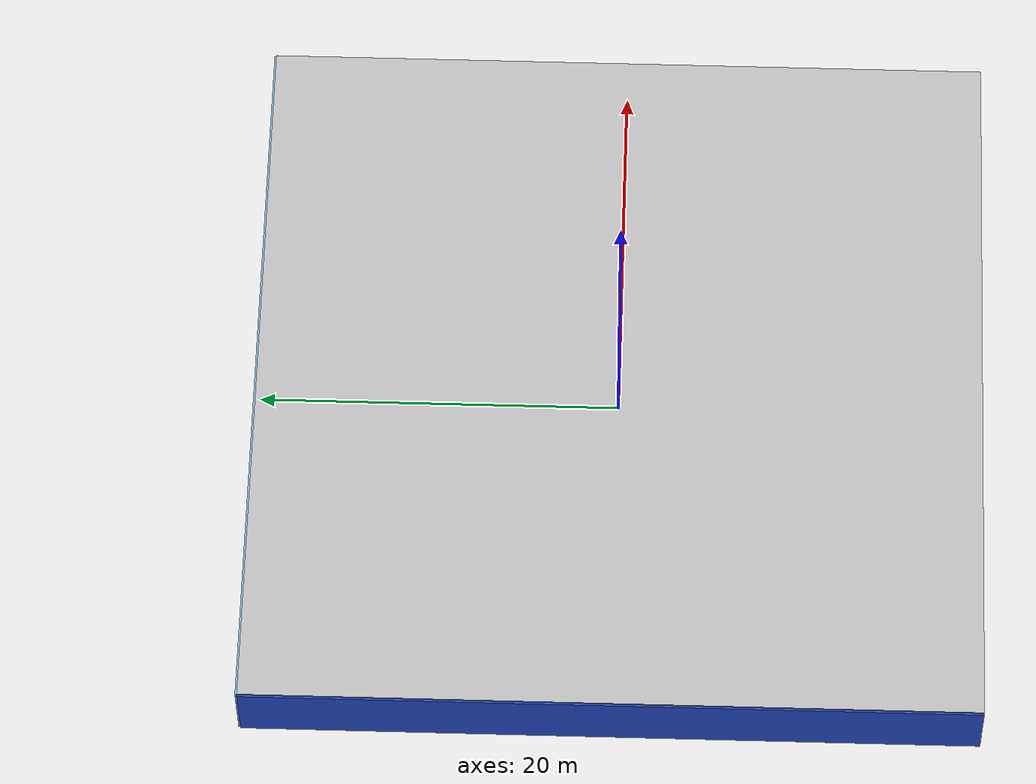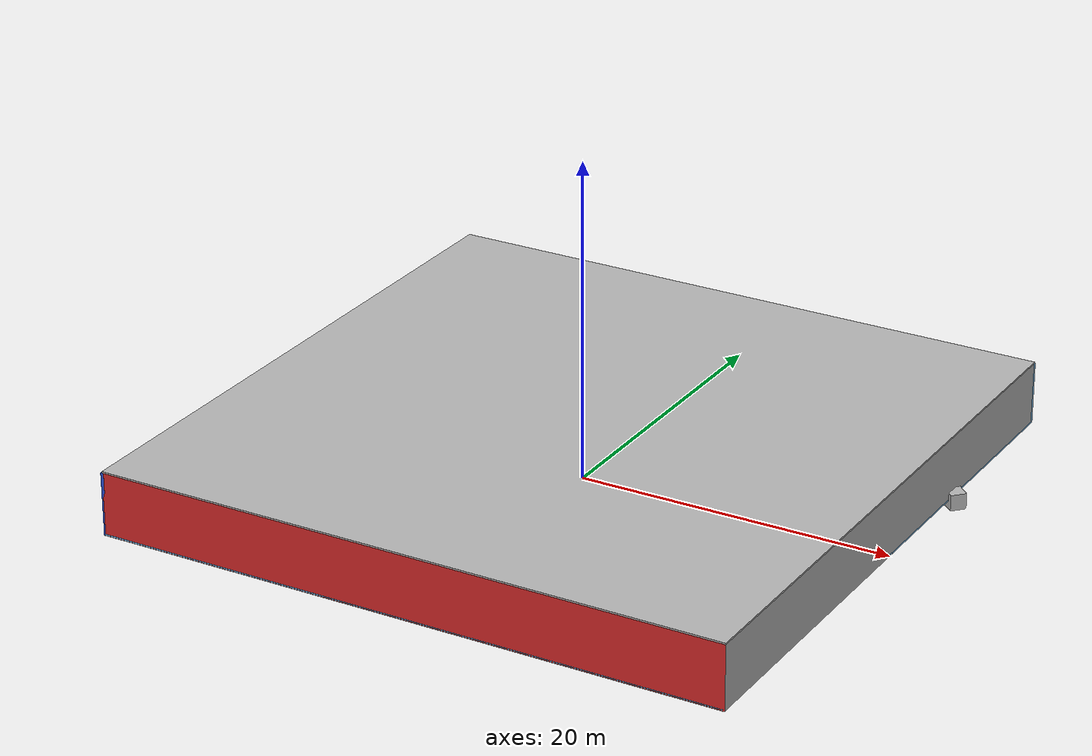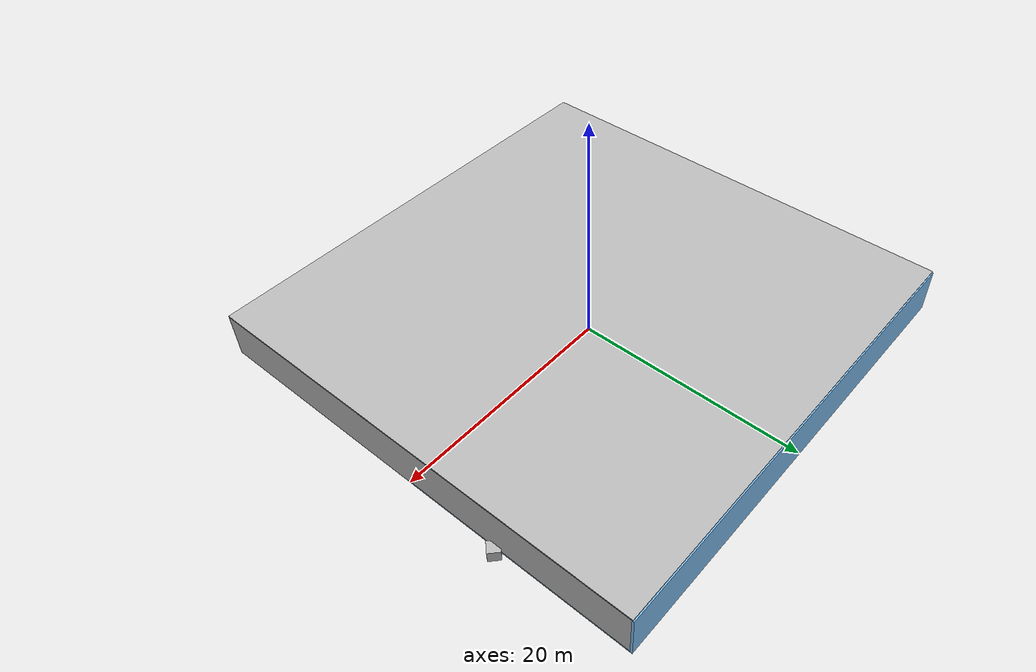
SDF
<sdf version="1.4">
 <world name="default">
  <physics type="ode">
   <max_step_size>0.001</max_step_size>
   <real_time_factor>1</real_time_factor>
   <real_time_update_rate>1000</real_time_update_rate>
   <gravity>0 0 -9.8</gravity>
  </physics>
  <scene><ambient>0.4 0.4 0.4 1</ambient><background>0.7 0.7 0.7 1</background><shadows>1</shadows></scene>
  <model name="Surrounding">
   <static>1</static>
   <link name="Ceiling">
    <collision name="Ceiling_Collision"><geometry><box><size>40 40 0.1</size></box></geometry></collision>
    <visual name="Ceiling_Visual">
     <geometry><box><size>40 40 0.1</size></box></geometry>
     <material>
      <script><uri>file://media/materials/scripts/gazebo.material</uri><name>Gazebo/LightOn</name></script>
     </material>
    </visual>
    <pose>0 0 4.05 0 0 0</pose>
   </link>
   <link name="Wall_South">
    <collision name="Wall_South_Collision">
     <geometry><box><size>40 0 4</size></box></geometry>
     <pose>0 0 2 0 -0 0</pose>
    </collision>
    <visual name="Wall_South_Visual">
     <pose>0 0 2 0 -0 0</pose>
     <geometry><box><size>40 0 4</size></box></geometry>
     <material>
      <script><uri>file://media/materials/scripts/gazebo.material</uri><name>Gazebo/RedBright</name></script>
     </material>
    </visual>
    <velocity_decay><linear>0</linear><angular>0</angular></velocity_decay>
    <pose>0 -20 0 0 -0 0</pose>
   </link>
   <link name="Wall_East">
    <collision name="Wall_21_Collision">
     <geometry><box><size>40 0 4</size></box></geometry>
     <pose>0 0 2 0 -0 0</pose>
    </collision>
    <visual name="Wall_21_Visual">
     <pose>0 0 2 0 -0 0</pose>
     <geometry><box><size>40 0 4</size></box></geometry>
     <material>
      <script><uri>file://media/materials/scripts/gazebo.material</uri><name>Gazebo/LightOff</name></script>
     </material>
    </visual>
    <velocity_decay><linear>0</linear><angular>0</angular></velocity_decay>
    <pose>20 0 0 0 -0 1.5708</pose>
   </link>
   <link name="Wall_North">
    <collision name="Wall_22_Collision">
     <geometry><box><size>40 0.2 4</size></box></geometry>
     <pose>0 0 2 0 -0 0</pose>
    </collision>
    <visual name="Wall_22_Visual">
     <pose>0 0 2 0 -0 0</pose>
     <geometry><box><size>40 0.2 4</size></box></geometry>
     <material>
      <script><uri>file://media/materials/scripts/gazebo.material</uri><name>Gazebo/SkyBlue</name></script>
     </material>
    </visual>
    <velocity_decay><linear>0</linear><angular>0</angular></velocity_decay>
    <pose>0 20 0 0 -0 0</pose>
   </link>
   <link name="Wall_West">
    <collision name="Wall_23_Collision">
     <geometry><box><size>40 0.2 4</size></box></geometry>
     <pose>0 0 2 0 -0 0</pose>
    </collision>
    <visual name="Wall_23_Visual">
     <pose>0 0 2 0 -0 0</pose>
     <geometry><box><size>40 0.2 4</size></box></geometry>
     <material>
      <script><uri>file://media/materials/scripts/gazebo.material</uri><name>Gazebo/BlueGlow</name></script>
     </material>
    </visual>
    <velocity_decay><linear>0</linear><angular>0</angular></velocity_decay>
    <pose>-20 0 0 0 0 -1.5708</pose>
   </link>
   <link name="Ground_link">
    <collision name="collision">
     <pose>0 0 .05 0 -0 0</pose>
     <geometry><box><size>40 40 0.1</size></box></geometry>
    </collision>
    <visual name="visual">
     <pose>0 0 .05 0 -0 0</pose>
     <geometry><box><size>40 40 0.1</size></box></geometry>
     <material>
      <script><uri>file://media/materials/scripts/gazebo.material</uri><name>Gazebo/SkyBlue</name></script>
     </material>
    </visual>
   </link>
   <static>1</static>
  </model>
  <spherical_coordinates>
   <surface_model>EARTH_WGS84</surface_model>
   <latitude_deg>0</latitude_deg>
   <longitude_deg>0</longitude_deg>
   <elevation>0</elevation>
   <heading_deg>0</heading_deg>
  </spherical_coordinates>
  <light name="lightball_0" type="diffuse">
   <diffuse>0.8 0.8 0.8 1</diffuse>
   <specular>0.2 0.2 0.2 1</specular>
   <attenuation>
    <range>100</range>
    <constant>0.7</constant>
    <linear>0.01</linear>
    <quadratic>0.001</quadratic>
   </attenuation>
   <direction>-0.5 0.1 -0.9</direction>
   <pose>-13.303624777 11.2001728936 0.504377625863 0 0 0</pose>
  </light>
  <light name="lightball_1" type="diffuse">
   <diffuse>0.8 0.8 0.8 1</diffuse>
   <specular>0.2 0.2 0.2 1</specular>
   <attenuation>
    <range>100</range>
    <constant>0.7</constant>
    <linear>0.01</linear>
    <quadratic>0.001</quadratic>
   </attenuation>
   <direction>-0.5 0.1 -0.9</direction>
   <pose>-16.1927024923 6.22709436434 0.91754890593 0 0 0</pose>
  </light>
  <light name="lightball_2" type="diffuse">
   <diffuse>0.8 0.8 0.8 1</diffuse>
   <specular>0.2 0.2 0.2 1</specular>
   <attenuation>
    <range>100</range>
    <constant>0.7</constant>
    <linear>0.01</linear>
    <quadratic>0.001</quadratic>
   </attenuation>
   <direction>-0.5 0.1 -0.9</direction>
   <pose>2.45469882551 10.5399261077 2.51161835508 0 0 0</pose>
  </light>
  <light name="lightball_3" type="diffuse">
   <diffuse>0.8 0.8 0.8 1</diffuse>
   <specular>0.2 0.2 0.2 1</specular>
   <attenuation>
    <range>100</range>
    <constant>0.7</constant>
    <linear>0.01</linear>
    <quadratic>0.001</quadratic>
   </attenuation>
   <direction>-0.5 0.1 -0.9</direction>
   <pose>-6.83499091477 -18.0171712113 2.76945980363 0 0 0</pose>
  </light>
  <light name="lightball_4" type="diffuse">
   <diffuse>0.8 0.8 0.8 1</diffuse>
   <specular>0.2 0.2 0.2 1</specular>
   <attenuation>
    <range>100</range>
    <constant>0.7</constant>
    <linear>0.01</linear>
    <quadratic>0.001</quadratic>
   </attenuation>
   <direction>-0.5 0.1 -0.9</direction>
   <pose>11.8028416804 6.72295224083 2.2644674921 0 0 0</pose>
  </light>
  <light name="lightball_5" type="diffuse">
   <diffuse>0.8 0.8 0.8 1</diffuse>
   <specular>0.2 0.2 0.2 1</specular>
   <attenuation>
    <range>100</range>
    <constant>0.7</constant>
    <linear>0.01</linear>
    <quadratic>0.001</quadratic>
   </attenuation>
   <direction>-0.5 0.1 -0.9</direction>
   <pose>1.22041989282 12.6933869335 2.50016743247 0 0 0</pose>
  </light>
  <light name="lightball_6" type="diffuse">
   <diffuse>0.8 0.8 0.8 1</diffuse>
   <specular>0.2 0.2 0.2 1</specular>
   <attenuation>
    <range>100</range>
    <constant>0.7</constant>
    <linear>0.01</linear>
    <quadratic>0.001</quadratic>
   </attenuation>
   <direction>-0.5 0.1 -0.9</direction>
   <pose>-10.2048594065 7.00373193059 3.1046270723 0 0 0</pose>
  </light>
  <light name="lightball_7" type="diffuse">
   <diffuse>0.8 0.8 0.8 1</diffuse>
   <specular>0.2 0.2 0.2 1</specular>
   <attenuation>
    <range>100</range>
    <constant>0.7</constant>
    <linear>0.01</linear>
    <quadratic>0.001</quadratic>
   </attenuation>
   <direction>-0.5 0.1 -0.9</direction>
   <pose>8.58497570092 0.756720951432 3.37351430451 0 0 0</pose>
  </light>
  <light name="lightball_8" type="diffuse">
   <diffuse>0.8 0.8 0.8 1</diffuse>
   <specular>0.2 0.2 0.2 1</specular>
   <attenuation>
    <range>100</range>
    <constant>0.7</constant>
    <linear>0.01</linear>
    <quadratic>0.001</quadratic>
   </attenuation>
   <direction>-0.5 0.1 -0.9</direction>
   <pose>2.18089134428 17.5045494052 2.85300831235 0 0 0</pose>
  </light>
  <light name="lightball_9" type="diffuse">
   <diffuse>0.8 0.8 0.8 1</diffuse>
   <specular>0.2 0.2 0.2 1</specular>
   <attenuation>
    <range>100</range>
    <constant>0.7</constant>
    <linear>0.01</linear>
    <quadratic>0.001</quadratic>
   </attenuation>
   <direction>-0.5 0.1 -0.9</direction>
   <pose>-16.415313164 3.18838706276 0.56857210039 0 0 0</pose>
  </light>
  <light name="lightball_10" type="diffuse">
   <diffuse>0.8 0.8 0.8 1</diffuse>
   <specular>0.2 0.2 0.2 1</specular>
   <attenuation>
    <range>100</range>
    <constant>0.7</constant>
    <linear>0.01</linear>
    <quadratic>0.001</quadratic>
   </attenuation>
   <direction>-0.5 0.1 -0.9</direction>
   <pose>12.6566909687 16.1213638949 3.65079546074 0 0 0</pose>
  </light>
  <light name="lightball_11" type="diffuse">
   <diffuse>0.8 0.8 0.8 1</diffuse>
   <specular>0.2 0.2 0.2 1</specular>
   <attenuation>
    <range>100</range>
    <constant>0.7</constant>
    <linear>0.01</linear>
    <quadratic>0.001</quadratic>
   </attenuation>
   <direction>-0.5 0.1 -0.9</direction>
   <pose>-8.89149210629 -16.9624243931 1.44606982301 0 0 0</pose>
  </light>
  <light name="lightball_12" type="diffuse">
   <diffuse>0.8 0.8 0.8 1</diffuse>
   <specular>0.2 0.2 0.2 1</specular>
   <attenuation>
    <range>100</range>
    <constant>0.7</constant>
    <linear>0.01</linear>
    <quadratic>0.001</quadratic>
   </attenuation>
   <direction>-0.5 0.1 -0.9</direction>
   <pose>-1.19030198925 1.35941216853 2.02719473784 0 0 0</pose>
  </light>
  <light name="lightball_13" type="diffuse">
   <diffuse>0.8 0.8 0.8 1</diffuse>
   <specular>0.2 0.2 0.2 1</specular>
   <attenuation>
    <range>100</range>
    <constant>0.7</constant>
    <linear>0.01</linear>
    <quadratic>0.001</quadratic>
   </attenuation>
   <direction>-0.5 0.1 -0.9</direction>
   <pose>2.68398877674 -11.2319764651 2.05800401177 0 0 0</pose>
  </light>
  <include>
   <uri>model://construction_cone</uri>
   <pose>-17.7467154129 13.0925967163 0 0 0 2.39583106503</pose>
  </include>
  <include><uri>model://table</uri><pose>-13.7446526234 -14.1573888965 0 0 0 2.16260589972</pose></include>
  <include>
   <uri>model://robocup_3Dsim_goal</uri>
   <pose>-13.3573052144 -7.34569663048 0 0 0 1.18027032648</pose>
  </include>
  <include>
   <uri>model://robocup_3Dsim_goal</uri>
   <pose>-13.6293735308 5.40198640591 0 0 0 0.698333543625</pose>
  </include>
  <include>
   <uri>model://construction_cone</uri>
   <pose>-14.2712020655 12.078039194 0 0 0 2.09644073811</pose>
  </include>
  <include><uri>model://cabinet</uri><pose>-15.1825490697 17.6530277057 0 0 0 0.238728154314</pose></include>
  <include><uri>model://cabinet</uri><pose>-12.1035543001 -15.2286571638 0 0 0 1.24656372264</pose></include>
  <include><uri>model://cabinet</uri><pose>-11.8224411309 -4.70265068086 0 0 0 1.73484993806</pose></include>
  <include><uri>model://table</uri><pose>-10.5770650372 1.3133736153 0 0 0 2.19809364427</pose></include>
  <include><uri>model://cabinet</uri><pose>-10.814775312 15.5742663999 0 0 0 2.02575394113</pose></include>
  <include><uri>model://cabinet</uri><pose>-5.5089833612 2.46971024104 0 0 0 2.64130216635</pose></include>
  <include><uri>model://cabinet</uri><pose>-2.91968531315 -1.3731787266 0 0 0 1.94312356707</pose></include>
  <include><uri>model://cabinet</uri><pose>-1.79181998715 0.69009027515 0 0 0 0.765319737302</pose></include>
  <include>
   <uri>model://construction_cone</uri>
   <pose>-3.11466969876 8.43442950593 0 0 0 2.65447093735</pose>
  </include>
  <include>
   <uri>model://construction_cone</uri>
   <pose>-2.91842022717 15.2385741468 0 0 0 1.36332396767</pose>
  </include>
  <include>
   <uri>model://construction_cone</uri>
   <pose>-0.413412644566 4.45190520224 0 0 0 0.134723128162</pose>
  </include>
  <include>
   <uri>model://robocup_3Dsim_goal</uri>
   <pose>-0.146779944049 12.6382387355 0 0 0 1.95035282266</pose>
  </include>
  <include><uri>model://cabinet</uri><pose>0.728915508939 16.6584409543 0 0 0 2.37904402869</pose></include>
  <include><uri>model://cabinet</uri><pose>3.82832257664 3.10253919829 0 0 0 0.665846548822</pose></include>
  <include><uri>model://cabinet</uri><pose>5.50244901585 -12.1128642168 0 0 0 3.00691136633</pose></include>
  <include>
   <uri>model://construction_cone</uri>
   <pose>6.77249306723 -4.6846439603 0 0 0 2.06219264685</pose>
  </include>
  <include><uri>model://cabinet</uri><pose>9.4202704261 -15.3903601745 0 0 0 2.96555061257</pose></include>
  <include>
   <uri>model://textured_shapes</uri>
   <pose>11.9348915683 9.85761564484 0 0 0 2.02228399795</pose>
  </include>
  <include><uri>model://cabinet</uri><pose>15.5869034069 -2.81208879585 0 0 0 1.04439313612</pose></include>
  <include>
   <uri>model://robocup_3Dsim_goal</uri>
   <pose>15.7153810491 -0.493006495532 0 0 0 0.703557330723</pose>
  </include>
  <include>
   <uri>model://construction_cone</uri>
   <pose>14.9674496168 16.4111474388 0 0 0 2.38558405935</pose>
  </include>
  <include><uri>model://cabinet</uri><pose>18.7088759517 -14.4575464137 0 0 0 2.10390469966</pose></include>
  <include><uri>model://cabinet</uri><pose>18.0622261004 -5.10163754654 0 0 0 1.19578061536</pose></include>
  <include>
   <uri>model://textured_shapes</uri>
   <pose>19.1856653149 7.33664046305 0 0 0 2.39498931747</pose>
  </include>
 </world>
</sdf>

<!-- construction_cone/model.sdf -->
<sdf version="1.5">
  <model name="Construction Cone">
    <link name="link">
      <collision name="collision">
        <geometry>
          <mesh>
            <scale>10 10 10</scale>
            <uri>file://isr-testbed/construction_cone/meshes/construction_cone.dae</uri>
          </mesh>
        </geometry>
      </collision>
      <visual name="visual">
        <geometry>
          <mesh>
            <scale>10 10 10</scale>
            <uri>file://isr-testbed/construction_cone/meshes/construction_cone.dae</uri>
          </mesh>
        </geometry>
      </visual>
    </link>
  </model>
</sdf>

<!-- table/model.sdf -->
<sdf version="1.5">
  <model name="table">
    <static>true</static>
    <link name="link">
      <collision name="surface">
        <pose>0 0 1.0 0 0 0</pose>
        <geometry>
          <box>
            <size>1.5 0.8 0.03</size>
          </box>
        </geometry>
        <surface>
          <friction>
            <ode>
              <mu>0.6</mu>
              <mu2>0.6</mu2>
            </ode>
          </friction>
        </surface>
      </collision>
      <visual name="visual1">
        <pose>0 0 1.0 0 0 0</pose>
        <geometry>
          <box>
            <size>1.5 0.8 0.03</size>
          </box>
        </geometry>
        <material>
          <script>
            <uri>model://media/materials/scripts/gazebo.material</uri>
            <name>Gazebo/Wood</name>
          </script>
        </material>
      </visual>
      <collision name="front_left_leg">
        <pose>0.68 0.38 0.5 0 0 0</pose>
        <geometry>
          <cylinder>
            <radius>0.02</radius>
            <length>1.0</length>
          </cylinder>
        </geometry>
      </collision>
      <visual name="front_left_leg">
        <pose>0.68 0.38 0.5 0 0 0</pose>
        <geometry>
          <cylinder>
            <radius>0.02</radius>
            <length>1.0</length>
          </cylinder>
        </geometry>
        <material>
          <script>
            <uri>model://media/materials/scripts/gazebo.material</uri>
            <name>Gazebo/Grey</name>
          </script>
        </material>
      </visual>
      <collision name="front_right_leg">
        <pose>0.68 -0.38 0.5 0 0 0</pose>
        <geometry>
          <cylinder>
            <radius>0.02</radius>
            <length>1.0</length>
          </cylinder>
        </geometry>
      </collision>
      <visual name="front_right_leg">
        <pose>0.68 -0.38 0.5 0 0 0</pose>
        <geometry>
          <cylinder>
            <radius>0.02</radius>
            <length>1.0</length>
          </cylinder>
        </geometry>
        <material>
          <script>
            <uri>model://media/materials/scripts/gazebo.material</uri>
            <name>Gazebo/Grey</name>
          </script>
        </material>
      </visual>
      <collision name="back_right_leg">
        <pose>-0.68 -0.38 0.5 0 0 0</pose>
        <geometry>
          <cylinder>
            <radius>0.02</radius>
            <length>1.0</length>
          </cylinder>
        </geometry>
      </collision>
      <visual name="back_right_leg">
        <pose>-0.68 -0.38 0.5 0 0 0</pose>
        <geometry>
          <cylinder>
            <radius>0.02</radius>
            <length>1.0</length>
          </cylinder>
        </geometry>
        <material>
          <script>
            <uri>model://media/materials/scripts/gazebo.material</uri>
            <name>Gazebo/Grey</name>
          </script>
        </material>
      </visual>
      <collision name="back_left_leg">
        <pose>-0.68 0.38 0.5 0 0 0</pose>
        <geometry>
          <cylinder>
            <radius>0.02</radius>
            <length>1.0</length>
          </cylinder>
        </geometry>
      </collision>
      <visual name="back_left_leg">
        <pose>-0.68 0.38 0.5 0 0 0</pose>
        <geometry>
          <cylinder>
            <radius>0.02</radius>
            <length>1.0</length>
          </cylinder>
        </geometry>
        <material>
          <script>
            <uri>model://media/materials/scripts/gazebo.material</uri>
            <name>Gazebo/Grey</name>
          </script>
        </material>
      </visual>
    </link>
  </model>
</sdf>

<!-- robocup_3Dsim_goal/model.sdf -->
<sdf version="1.5">
  <model name="robocup_3d_goal">
    <static>true</static>
    <link name="left_post">
      <pose>0 1.05 0.45 0 0 0</pose>
      <collision name="collision">
        <geometry>
          <cylinder>
            <radius>0.05</radius>
            <length>0.9</length>
          </cylinder>
        </geometry>
      </collision>
      <visual name="visual">
        <geometry>
          <cylinder>
            <radius>0.05</radius>
            <length>0.9</length>
          </cylinder>
        </geometry>
        <material>
          <script>
            <uri>file://media/materials/scripts/gazebo.material</uri>
            <name>Gazebo/ZincYellow</name>
          </script>
        </material>
      </visual>
    </link>
    <link name="left_support_horiz_lower">
      <pose>0.30 1.05 0.01 0 0 0</pose>
      <collision name="collision">
        <geometry>
          <box>
            <size>0.50 0.02 0.02</size>
          </box>
        </geometry>
      </collision>
      <visual name="visual">
        <geometry>
          <box>
            <size>0.50 0.02 0.02</size>
          </box>
        </geometry>
        <material>
          <script>
            <uri>file://media/materials/scripts/gazebo.material</uri>
            <name>Gazebo/White</name>
          </script>
        </material>
      </visual>
    </link>
    <link name="left_support_horiz_upper">
      <pose>0.30 1.05 0.79 0 0 0</pose>
      <collision name="collision">
        <geometry>
          <box>
            <size>0.50 0.02 0.02</size>
          </box>
        </geometry>
      </collision>
      <visual name="visual">
        <geometry>
          <box>
            <size>0.50 0.02 0.02</size>
          </box>
        </geometry>
        <material>
          <script>
            <uri>file://media/materials/scripts/gazebo.material</uri>
            <name>Gazebo/White</name>
          </script>
        </material>
      </visual>
    </link>
    <link name="left_support_vertical">
      <pose>0.56 1.05 0.4 0 1.5708 0</pose>
      <collision name="collision">
        <geometry>
          <box>
            <size>0.80 0.02 0.02</size>
          </box>
        </geometry>
      </collision>
      <visual name="visual">
        <geometry>
          <box>
            <size>0.80 0.02 0.02</size>
          </box>
        </geometry>
        <material>
          <script>
            <uri>file://media/materials/scripts/gazebo.material</uri>
            <name>Gazebo/White</name>
          </script>
        </material>
      </visual>
    </link>
    <link name="right_support_horiz_lower">
      <pose>0.30 -1.05 0.01 0 0 0</pose>
      <collision name="collision">
        <geometry>
          <box>
            <size>0.50 0.02 0.02</size>
          </box>
        </geometry>
      </collision>
      <visual name="visual">
        <geometry>
          <box>
            <size>0.50 0.02 0.02</size>
          </box>
        </geometry>
        <material>
          <script>
            <uri>file://media/materials/scripts/gazebo.material</uri>
            <name>Gazebo/White</name>
          </script>
        </material>
      </visual>
    </link>
    <link name="right_support_horiz_upper">
      <pose>0.30 -1.05 0.79 0 0 0</pose>
      <collision name="collision">
        <geometry>
          <box>
            <size>0.50 0.02 0.02</size>
          </box>
        </geometry>
      </collision>
      <visual name="visual">
        <geometry>
          <box>
            <size>0.50 0.02 0.02</size>
          </box>
        </geometry>
        <material>
          <script>
            <uri>file://media/materials/scripts/gazebo.material</uri>
            <name>Gazebo/White</name>
          </script>
        </material>
      </visual>
    </link>
    <link name="right_support_vertical">
      <pose>0.56 -1.05 0.4 0 1.5708 0</pose>
      <collision name="collision">
        <geometry>
          <box>
            <size>0.80 0.02 0.02</size>
          </box>
        </geometry>
      </collision>
      <visual name="visual">
        <geometry>
          <box>
            <size>0.80 0.02 0.02</size>
          </box>
        </geometry>
        <material>
          <script>
            <uri>file://media/materials/scripts/gazebo.material</uri>
            <name>Gazebo/White</name>
          </script>
        </material>
      </visual>
    </link>
    <link name="center_support_horiz_lower">
      <pose>0.56 0 0.01 0 1.5708 0</pose>
      <collision name="collision">
        <geometry>
          <box>
            <size>0.02 2.08 0.02</size>
          </box>
        </geometry>
      </collision>
      <visual name="visual">
        <geometry>
          <box>
            <size>0.02 2.08 0.02</size>
          </box>
        </geometry>
        <material>
          <script>
            <uri>file://media/materials/scripts/gazebo.material</uri>
            <name>Gazebo/White</name>
          </script>
        </material>
      </visual>
    </link>
    <link name="center_support_horiz_upper">
      <pose>0.56 0 0.79 0 1.5708 0</pose>
      <collision name="collision">
        <geometry>
          <box>
            <size>0.02 2.08 0.02</size>
          </box>
        </geometry>
      </collision>
      <visual name="visual">
        <geometry>
          <box>
            <size>0.02 2.08 0.02</size>
          </box>
        </geometry>
        <material>
          <script>
            <uri>file://media/materials/scripts/gazebo.material</uri>
            <name>Gazebo/White</name>
          </script>
        </material>
      </visual>
    </link>
    <link name="right_post">
      <pose>0 -1.05 0.45 0 0 0</pose>
      <collision name="collision">
        <geometry>
          <cylinder>
            <radius>0.05</radius>
            <length>0.9</length>
          </cylinder>
        </geometry>
      </collision>
      <visual name="visual">
        <geometry>
          <cylinder>
            <radius>0.05</radius>
            <length>0.9</length>
          </cylinder>
        </geometry>
        <material>
          <script>
            <uri>file://media/materials/scripts/gazebo.material</uri>
            <name>Gazebo/ZincYellow</name>
          </script>
        </material>
      </visual>
    </link>
    <link name="crossbar">
      <pose>0 0 0.85 1.57 1.57 0</pose>
      <collision name="collision">
        <geometry>
          <cylinder>
            <radius>0.05</radius>
            <length>2.0</length>
          </cylinder>
        </geometry>
      </collision>
      <visual name="visual">
        <geometry>
          <cylinder>
            <radius>0.05</radius>
            <length>2.0</length>
          </cylinder>
        </geometry>
        <material>
          <script>
            <uri>file://media/materials/scripts/gazebo.material</uri>
            <name>Gazebo/ZincYellow</name>
          </script>
        </material>
      </visual>
    </link>
    <link name="center_net">
      <pose>0.56 0 0.40 0 0 0</pose>
      <collision name="collision">
        <geometry>
          <box>
            <size>0.01 2.1 0.80</size>
          </box>
        </geometry>
      </collision>
      <visual name="visual">
        <geometry>
          <box>
            <size>0.01 2.1 0.80</size>
          </box>
        </geometry>
        <material>
          <script>
            <uri>model://../model_source/models/robocup09_spl_field/materials/scripts/</uri>
            <uri>model://../model_source/models/robocup09_spl_field/materials/textures/</uri>
            <name>RoboCup/Net</name>
          </script>
        </material>
      </visual>
    </link>
    <link name="left_net">
      <pose>0.30 1.05 0.40 0 0 0</pose>
      <collision name="collision">
        <geometry>
          <box>
            <size>0.50 0.01 0.76</size>
          </box>
        </geometry>
      </collision>
      <visual name="visual">
        <geometry>
          <box>
            <size>0.50 0.01 0.76</size>
          </box>
        </geometry>
        <material>
          <script>
            <uri>model://../model_source/models/robocup09_spl_field/materials/scripts/</uri>
            <uri>model://../model_source/models/robocup09_spl_field/materials/textures/</uri>
            <name>RoboCup/Net</name>
          </script>
        </material>
      </visual>
    </link>
    <link name="right_net">
      <pose>0.30 -1.05 0.40 0 0 0</pose>
      <collision name="collision">
        <geometry>
          <box>
            <size>0.50 0.01 0.76</size>
          </box>
        </geometry>
      </collision>
      <visual name="visual">
        <geometry>
          <box>
            <size>0.50 0.01 0.76</size>
          </box>
        </geometry>
        <material>
          <script>
            <uri>model://../model_source/models/robocup09_spl_field/materials/scripts/</uri>
            <uri>model://../model_source/models/robocup09_spl_field/materials/textures/</uri>
            <name>RoboCup/Net</name>
          </script>
        </material>
      </visual>
    </link>
  </model>
</sdf>

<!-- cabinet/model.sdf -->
<sdf version="1.5">
  <model name="cabinet">
    <static>true</static>
    <link name="cabinet_bottom_plate">
      <inertial>
        <pose>0 0 -1 0 0 0</pose>
        <inertia>
          <ixx>2.050000</ixx>
          <ixy>0</ixy>
          <ixz>0</ixz>
          <iyy>2.050000</iyy>
          <iyz>0</iyz>
          <izz>2.050000</izz>
        </inertia>
        <mass>25.000000</mass>
      </inertial>
      <collision name="cabinet_bottom_plate_geom">
        <pose>0 0 0.010000 0 0 0</pose>
        <geometry>
          <box>
            <size>0.450000 0.450000 0.020000</size>
          </box>
        </geometry>
      </collision>
      <visual name="cabinet_bottom_plate_geom_visual">
        <pose>0 0 0.010000 0 0 0</pose>
        <geometry>
          <box>
            <size>0.450000 0.450000 0.020000</size>
          </box>
        </geometry>
        <material>
          <script>
            <uri>model://media/materials/scripts/gazebo.material</uri>
            <name>Gazebo/Wood</name>
          </script>
        </material>
      </visual>
      <collision name="cabinet_bottom_plate_geom_cabinet_back_plate">
        <pose>0.235000 0 0.510000 0 0 0</pose>
        <geometry>
          <box>
            <size>0.020000 0.450000 1.020000</size>
          </box>
        </geometry>
      </collision>
      <visual name="cabinet_bottom_plate_geom_cabinet_back_plate_visual">
        <pose>0.235000 0 0.510000 0 0 0</pose>
        <geometry>
          <box>
            <size>0.020000 0.450000 1.020000</size>
          </box>
        </geometry>
        <material>
          <script>
            <uri>model://media/materials/scripts/gazebo.material</uri>
            <name>Gazebo/Wood</name>
          </script>
        </material>
      </visual>
      <collision name="cabinet_bottom_plate_geom_cabinet_left_plate">
        <pose>0 0.235000 0.510000 0 0 0</pose>
        <geometry>
          <box>
            <size>0.450000 0.020000 1.020000</size>
          </box>
        </geometry>
      </collision>
      <visual name="cabinet_bottom_plate_geom_cabinet_left_plate_visual">
        <pose>0 0.235000 0.510000 0 0 0</pose>
        <geometry>
          <box>
            <size>0.450000 0.020000 1.020000</size>
          </box>
        </geometry>
        <material>
          <script>
            <uri>model://media/materials/scripts/gazebo.material</uri>
            <name>Gazebo/Wood</name>
          </script>
        </material>
      </visual>
      <collision name="cabinet_bottom_plate_geom_cabinet_middle_plate">
        <pose>0 0 0.510000 0 0 0</pose>
        <geometry>
          <box>
            <size>0.450000 0.450000 0.020000</size>
          </box>
        </geometry>
      </collision>
      <visual name="cabinet_bottom_plate_geom_cabinet_middle_plate_visual">
        <pose>0 0 0.510000 0 0 0</pose>
        <geometry>
          <box>
            <size>0.450000 0.450000 0.020000</size>
          </box>
        </geometry>
        <material>
          <script>
            <uri>model://media/materials/scripts/gazebo.material</uri>
            <name>Gazebo/Wood</name>
          </script>
        </material>
      </visual>
      <collision name="cabinet_bottom_plate_geom_cabinet_right_plate">
        <pose>0 -0.235000 0.510000 0 0 0</pose>
        <geometry>
          <box>
            <size>0.450000 0.020000 1.020000</size>
          </box>
        </geometry>
      </collision>
      <visual name="cabinet_bottom_plate_geom_cabinet_right_plate_visual">
        <pose>0 -0.235000 0.510000 0 0 0</pose>
        <geometry>
          <box>
            <size>0.450000 0.020000 1.020000</size>
          </box>
        </geometry>
        <material>
          <script>
            <uri>model://media/materials/scripts/gazebo.material</uri>
            <name>Gazebo/Wood</name>
          </script>
        </material>
      </visual>
      <collision name="cabinet_bottom_plate_geom_cabinet_top_plate">
        <pose>0 0 1.010000 0 0 0</pose>
        <geometry>
          <box>
            <size>0.450000 0.450000 0.020000</size>
          </box>
        </geometry>
      </collision>
      <visual name="cabinet_bottom_plate_geom_cabinet_top_plate_visual">
        <pose>0 0 1.010000 0 0 0</pose>
        <geometry>
          <box>
            <size>0.450000 0.450000 0.020000</size>
          </box>
        </geometry>
        <material>
          <script>
            <uri>model://media/materials/scripts/gazebo.material</uri>
            <name>Gazebo/Wood</name>
          </script>
        </material>
      </visual>
    </link>
  </model>
</sdf>

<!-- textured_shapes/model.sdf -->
<sdf version="1.6">
  <model name="textured_shapes">
    <pose>0 0 0.5 0 0 0</pose>
    <link name="box">
      <pose>0 -1.5 0 0 0 0</pose>
      <collision name="collision">
        <geometry>
          <box>
            <size>1 1 1</size>
          </box>
        </geometry>
      </collision>
      <visual name="visual">
        <geometry>
          <box>
            <size>1 1 1</size>
          </box>
        </geometry>
        <material>
          <script>
            <uri>model://../model_source/models/textured_shapes/materials/scripts</uri>
            <uri>model://../model_source/models/textured_shapes/materials/textures</uri>
            <name>TexturedShape/Squares</name>
          </script>
        </material>
      </visual>
    </link>
    <link name="sphere">
      <collision name="collision">
        <geometry>
          <sphere>
            <radius>0.5</radius>
          </sphere>
        </geometry>
      </collision>
      <visual name="visual">
        <geometry>
          <sphere>
            <radius>0.5</radius>
          </sphere>
        </geometry>
        <material>
          <script>
            <uri>model://../model_source/models/textured_shapes/materials/scripts</uri>
            <uri>model://../model_source/models/textured_shapes/materials/textures</uri>
            <name>TexturedShape/Squares</name>
          </script>
        </material>
      </visual>
    </link>
    <link name="cylinder">
      <pose>0 1.5 0 0 0 0</pose>
      <collision name="collision">
        <geometry>
          <cylinder>
            <radius>0.5</radius>
            <length>1</length>
          </cylinder>
        </geometry>
      </collision>
      <visual name="visual">
        <geometry>
          <cylinder>
            <radius>0.5</radius>
            <length>1</length>
          </cylinder>
        </geometry>
        <material>
          <script>
            <uri>model://../model_source/models/textured_shapes/materials/scripts</uri>
            <uri>model://../model_source/models/textured_shapes/materials/textures</uri>
            <name>TexturedShape/Squares</name>
          </script>
        </material>
      </visual>
    </link>
  </model>
</sdf>
